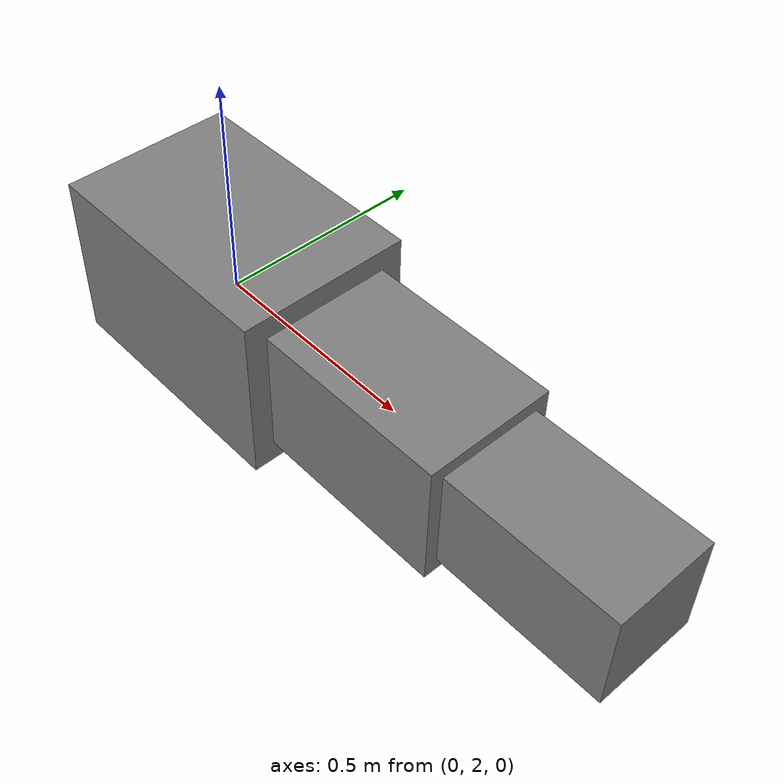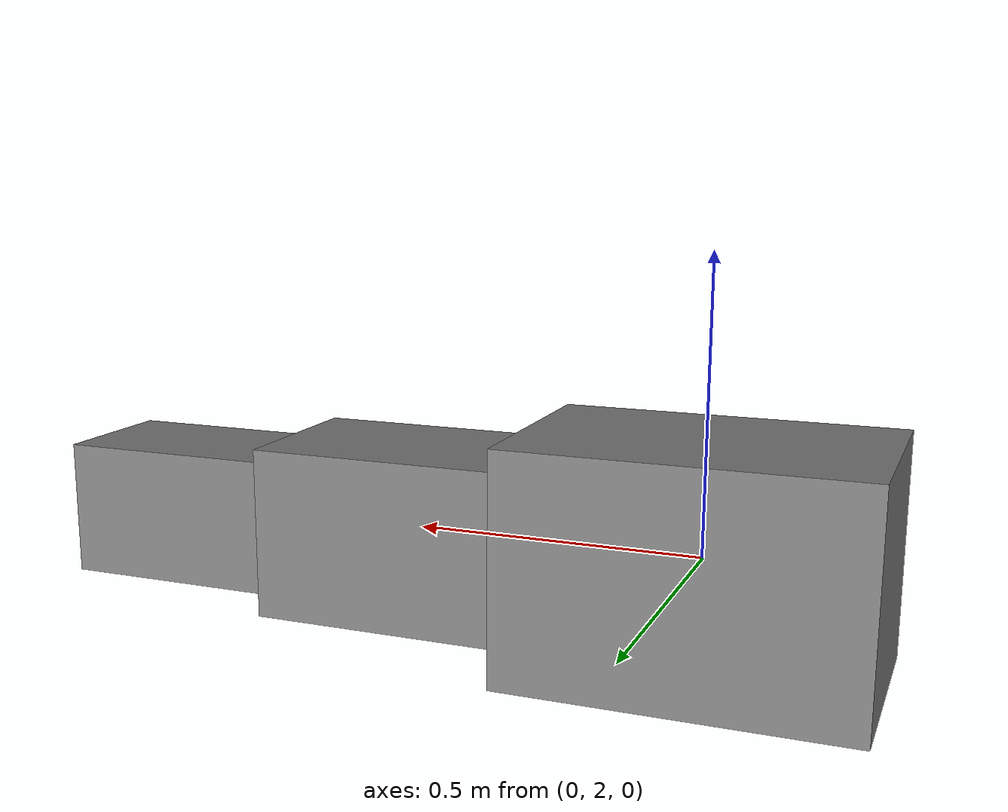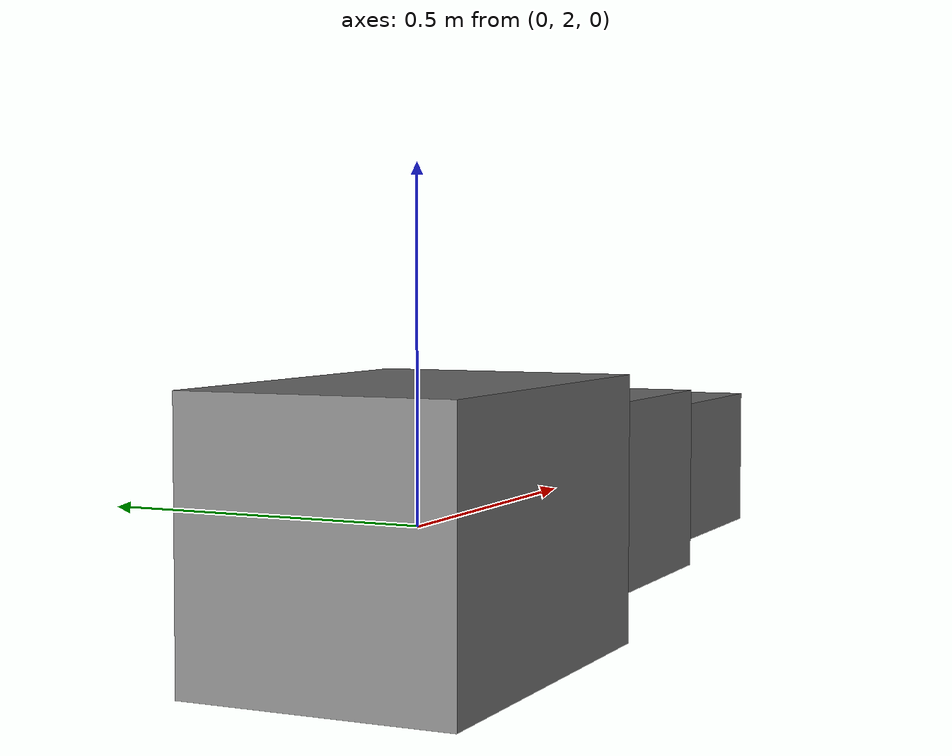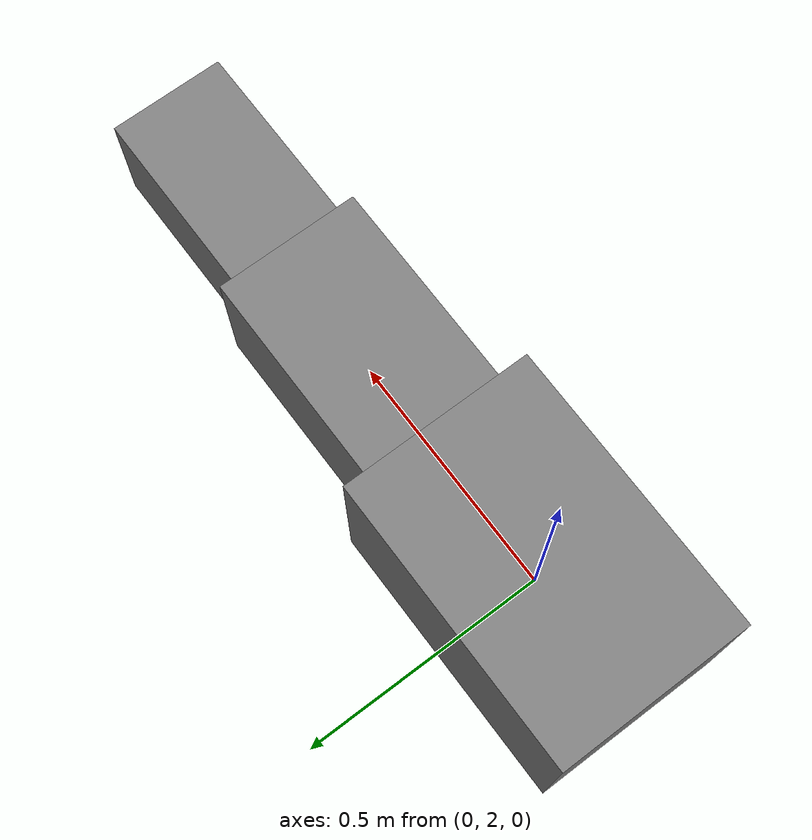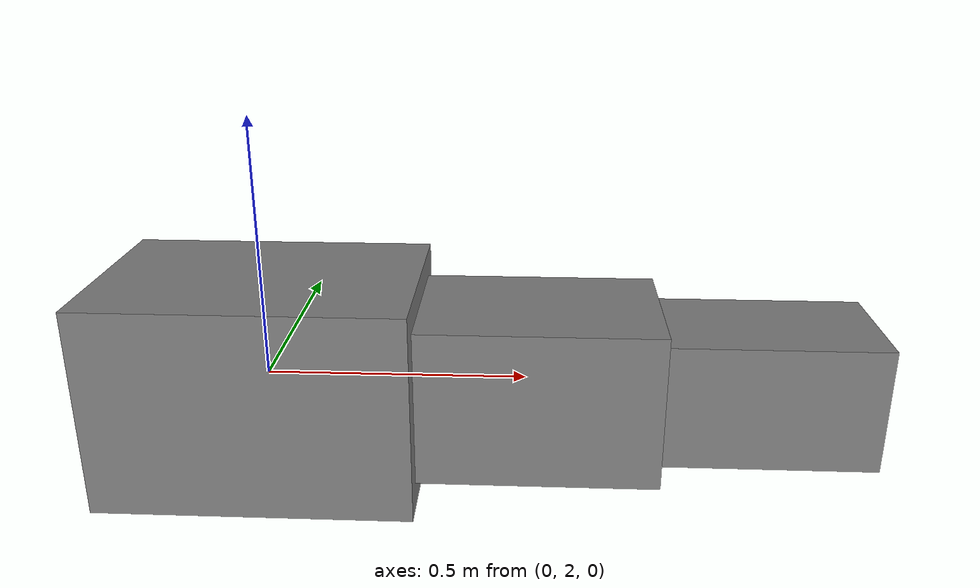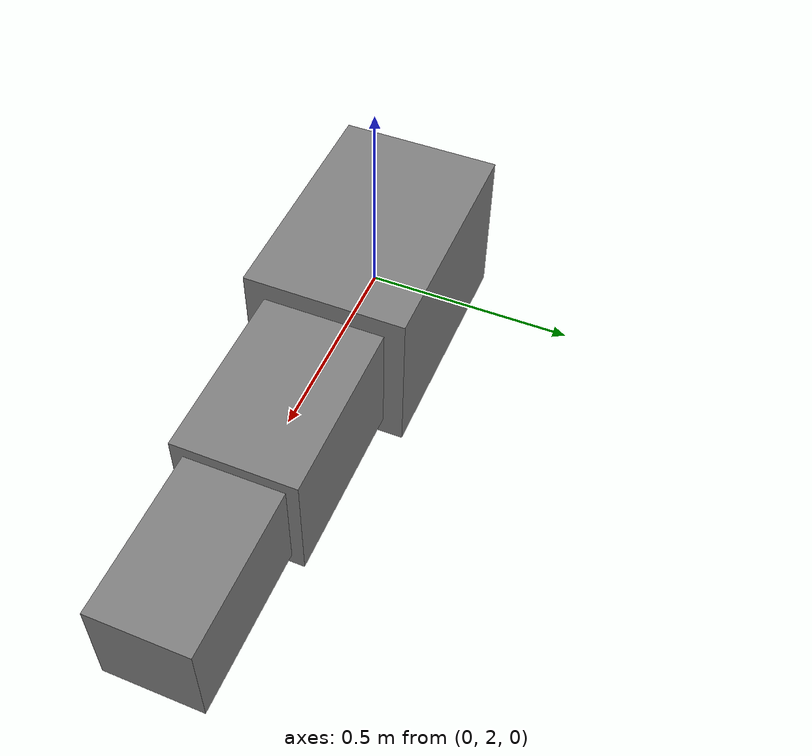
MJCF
<mujoco model="tiny-two-link">
  <worldbody>
    <body name="body" pos="0 2 0"><geom type="box" size="0.3 0.2 0.2"/>
      <body name="arm" pos="0.5 0 0"><joint name="shoulder" type="hinge" axis="0 0 1" range="-1.2 1.2"/><geom type="box" size="0.25 0.15 0.15"/>
        <body name="tip" pos="0.45 0 0"><joint name="elbow" type="hinge" axis="0 0 1" range="-1.2 1.2"/><geom type="box" size="0.2 0.12 0.12"/></body>
      </body>
    </body>
  </worldbody>
</mujoco>
